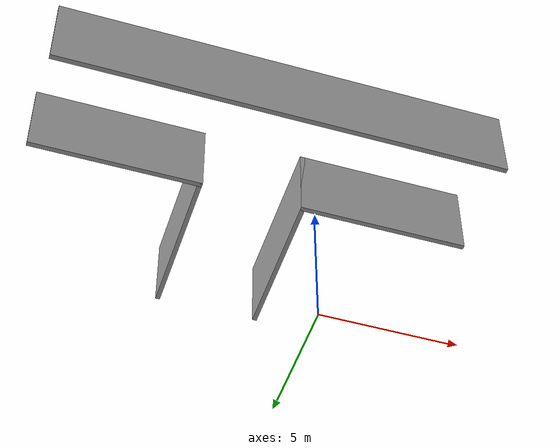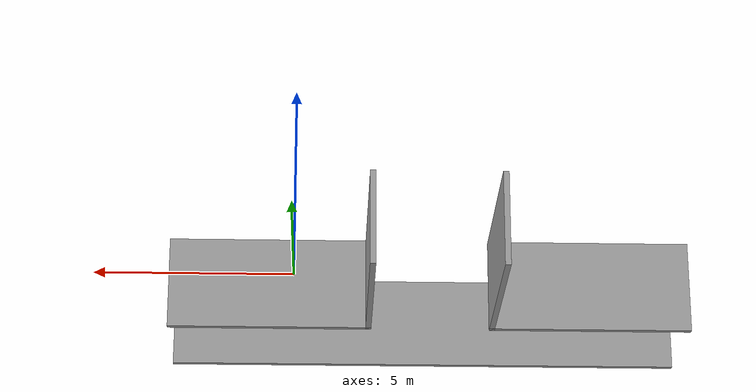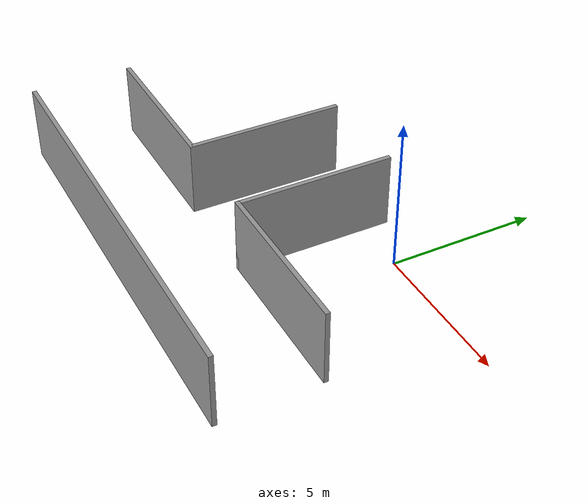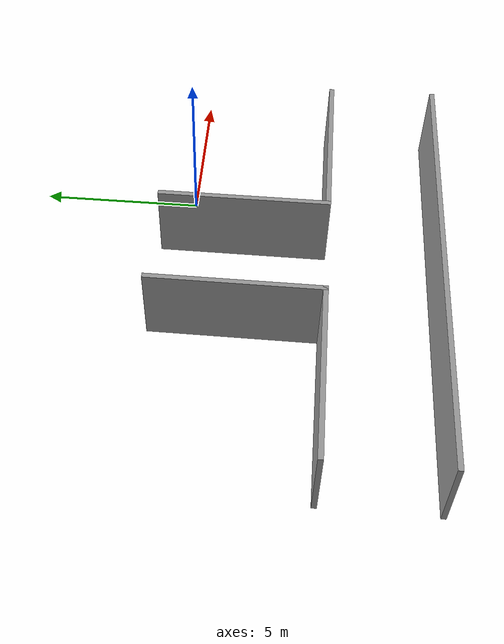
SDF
<?xml version='1.0'?>
<sdf version='1.6'>
  <model name='3-coridor'>
    <pose frame=''>-3.61016 -3.4048 0 0 -0 0</pose>
    <link name='Wall_10'>
      <collision name='Wall_10_Collision'>
        <geometry>
          <box>
            <size>5.5 0.15 2.5</size>
          </box>
        </geometry>
        <pose frame=''>0 0 1.25 0 -0 0</pose>
      </collision>
      <visual name='Wall_10_Visual'>
        <pose frame=''>0 0 1.25 0 -0 0</pose>
        <geometry>
          <box>
            <size>5.5 0.15 2.5</size>
          </box>
        </geometry>
        <material>
          <script>
            <uri>file://media/materials/scripts/gazebo.material</uri>
            <name>Gazebo/Grey</name>
          </script>
          <ambient>1 1 1 1</ambient>
        </material>
        <meta>
          <layer>0</layer>
        </meta>
      </visual>
      <pose frame=''>-4.375 -0.875 0 0 -0 3.14159</pose>
    </link>
    <link name='Wall_12'>
      <collision name='Wall_12_Collision'>
        <geometry>
          <box>
            <size>14.25 0.15 2.5</size>
          </box>
        </geometry>
        <pose frame=''>0 0 1.25 0 -0 0</pose>
      </collision>
      <visual name='Wall_12_Visual'>
        <pose frame=''>0 0 1.25 0 -0 0</pose>
        <geometry>
          <box>
            <size>14.25 0.15 2.5</size>
          </box>
        </geometry>
        <material>
          <script>
            <uri>file://media/materials/scripts/gazebo.material</uri>
            <name>Gazebo/Grey</name>
          </script>
          <ambient>1 1 1 1</ambient>
        </material>
        <meta>
          <layer>0</layer>
        </meta>
      </visual>
      <pose frame=''>-0 -4.225 0 0 -0 0</pose>
    </link>
    <link name='Wall_2'>
      <collision name='Wall_2_Collision'>
        <geometry>
          <box>
            <size>5.25 0.15 2.5</size>
          </box>
        </geometry>
        <pose frame=''>0 0 1.25 0 -0 0</pose>
      </collision>
      <visual name='Wall_2_Visual'>
        <pose frame=''>0 0 1.25 0 -0 0</pose>
        <geometry>
          <box>
            <size>5.25 0.15 2.5</size>
          </box>
        </geometry>
        <material>
          <script>
            <uri>file://media/materials/scripts/gazebo.material</uri>
            <name>Gazebo/Grey</name>
          </script>
          <ambient>1 1 1 1</ambient>
        </material>
        <meta>
          <layer>0</layer>
        </meta>
      </visual>
      <pose frame=''>-1.7 1.675 0 0 -0 1.5708</pose>
    </link>
    <link name='Wall_5'>
      <collision name='Wall_5_Collision'>
        <geometry>
          <box>
            <size>5.25 0.15 2.5</size>
          </box>
        </geometry>
        <pose frame=''>0 0 1.25 0 -0 0</pose>
      </collision>
      <visual name='Wall_5_Visual'>
        <pose frame=''>0 0 1.25 0 -0 0</pose>
        <geometry>
          <box>
            <size>5.25 0.15 2.5</size>
          </box>
        </geometry>
        <material>
          <script>
            <uri>file://media/materials/scripts/gazebo.material</uri>
            <name>Gazebo/Grey</name>
          </script>
          <ambient>1 1 1 1</ambient>
        </material>
        <meta>
          <layer>0</layer>
        </meta>
      </visual>
      <pose frame=''>1.65 1.675 0 0 -0 -1.5708</pose>
    </link>
    <link name='Wall_6'>
      <collision name='Wall_6_Collision'>
        <geometry>
          <box>
            <size>5.5 0.15 2.5</size>
          </box>
        </geometry>
        <pose frame=''>0 0 1.25 0 -0 0</pose>
      </collision>
      <visual name='Wall_6_Visual'>
        <pose frame=''>0 0 1.25 0 -0 0</pose>
        <geometry>
          <box>
            <size>5.5 0.15 2.5</size>
          </box>
        </geometry>
        <material>
          <script>
            <uri>file://media/materials/scripts/gazebo.material</uri>
            <name>Gazebo/Grey</name>
          </script>
          <ambient>1 1 1 1</ambient>
        </material>
        <meta>
          <layer>0</layer>
        </meta>
      </visual>
      <pose frame=''>4.325 -0.875 0 0 -0 0</pose>
    </link>
    <static>1</static>
  </model>
</sdf>
